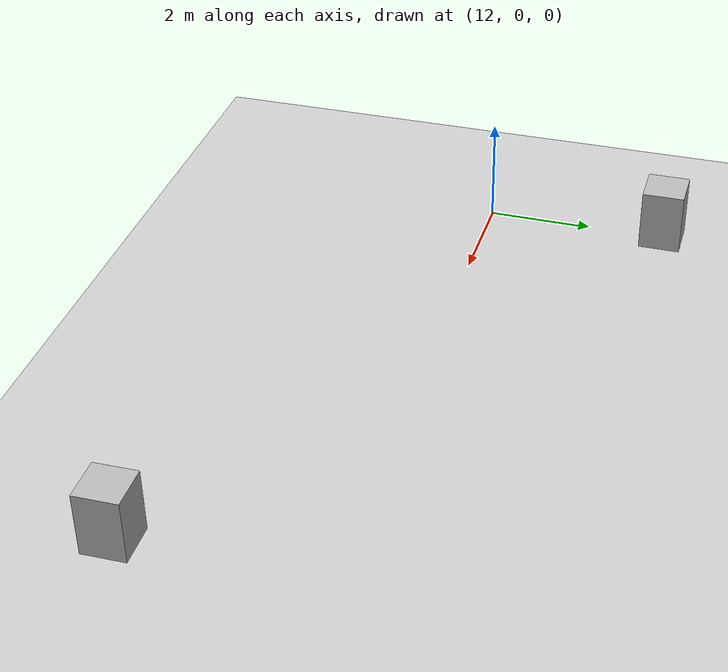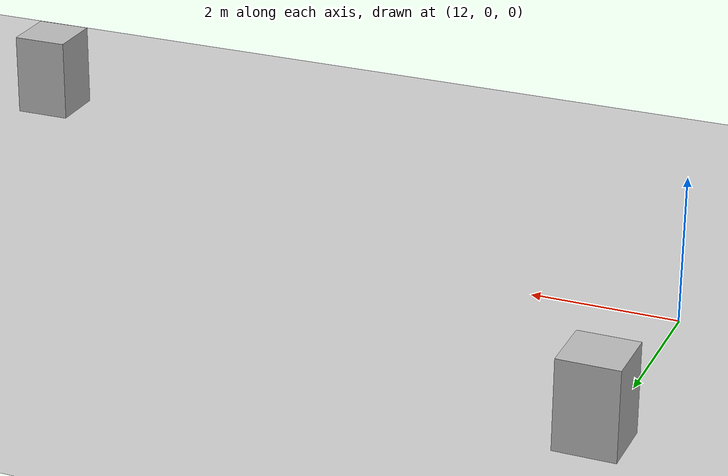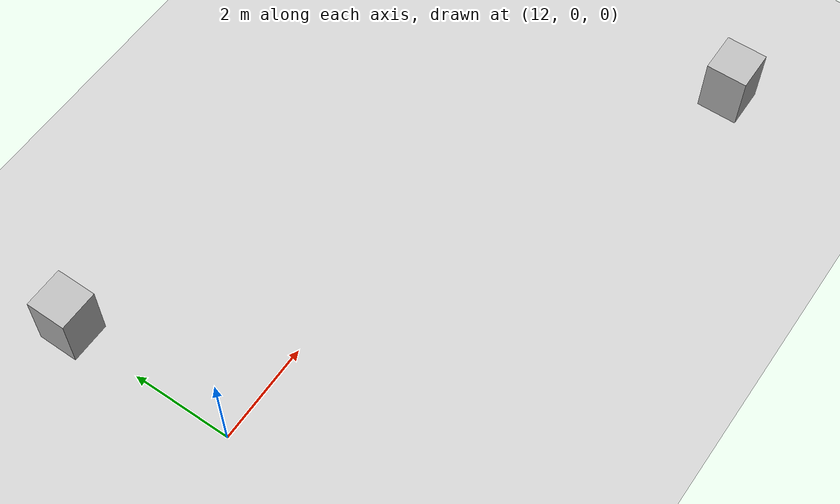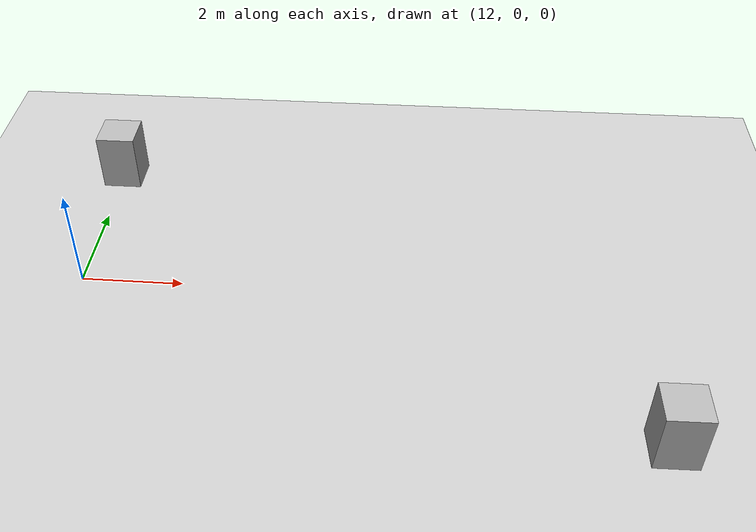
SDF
<?xml version="1.0"?>
<sdf version="1.6">
  <world name="v2-04d-cruise-s4606">
    <gravity>0 0 -9.81</gravity>
    <physics name="v2_deterministic" type="ode">
      <max_step_size>0.002</max_step_size>
      <real_time_update_rate>500</real_time_update_rate>
    </physics>
    <include>
      <uri>model://sun</uri>
    </include>
    <include>
      <uri>model://ground_plane</uri>
    </include>
    <model name="cruise-left">
      <static>true</static>
      <pose>12.033396275 3.464340731 0.600000000 0 0 -0.001387895</pose>
      <link name="link">
        <collision name="collision">
          <geometry>
            <box>
              <size>0.800000 0.800000 1.200000</size>
            </box>
          </geometry>
        </collision>
        <visual name="visual">
          <geometry>
            <box>
              <size>0.800000 0.800000 1.200000</size>
            </box>
          </geometry>
        </visual>
      </link>
    </model>
    <model name="cruise-right">
      <static>true</static>
      <pose>22.957801384 -3.466803242 0.600000000 0 0 0.009919499</pose>
      <link name="link">
        <collision name="collision">
          <geometry>
            <box>
              <size>0.800000 0.800000 1.200000</size>
            </box>
          </geometry>
        </collision>
        <visual name="visual">
          <geometry>
            <box>
              <size>0.800000 0.800000 1.200000</size>
            </box>
          </geometry>
        </visual>
      </link>
    </model>
  </world>
</sdf>
